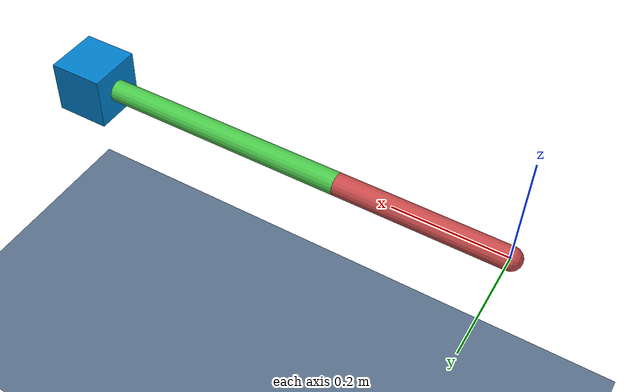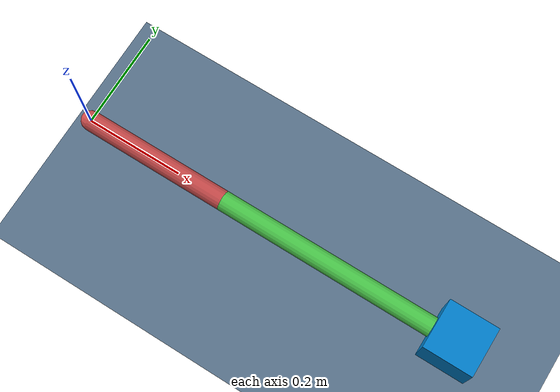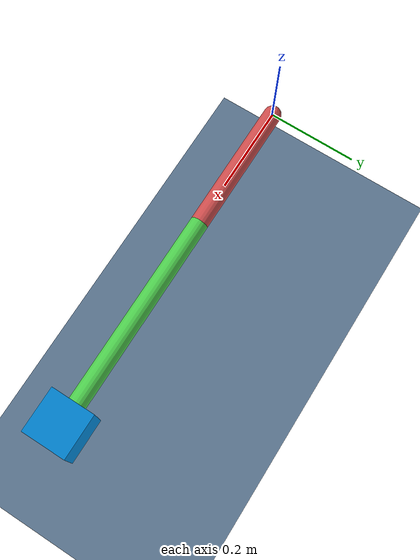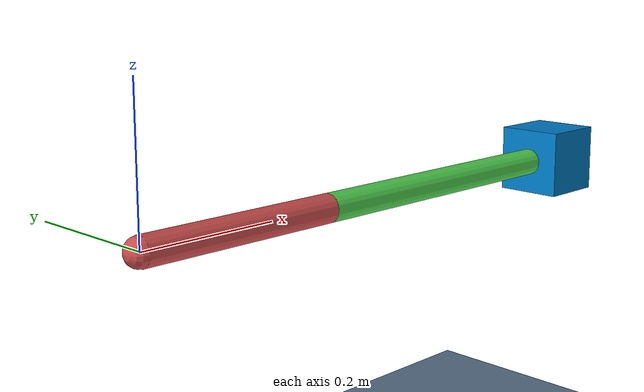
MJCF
<mujoco model="slider_crank">
    <!-- 编译和仿真选项 -->
    <compiler angle="degree" coordinate="local"/>

    <option timestep="0.001" gravity="0 0 -9.81" />

  <asset>
    <texture name="groundplane" type="2d" builtin="checker" rgb1="0.2 0.3 0.4" rgb2="0.5 0.6 0.7" mark="edge" markrgb="0.8 0.8 0.8" width="300" height="300"/>
    <material name="groundplane" texture="groundplane" texrepeat="5 5" texuniform="true" reflectance="0.5"/>
  </asset>

    <!-- 世界坐标系(地面) -->
    <worldbody>
        <light name="light_0" pos="0 0 10" dir="0 0 -1"/>
        <geom name="ground_plane" pos="0 0 -0.5" type="plane" size="5 5 0.1"  material="groundplane"/>

        <!-- 第一根连杆 Link1: 以A点为铰，在z轴转动 -->
        <body name="link1" pos="0 0 0">
            <!-- 关节：绕z轴的hinge -->
            <joint name="jointA" type="hinge" axis="0 1 0" limited="false" damping="5"/>
            <!-- 这段geom仅用于可视化，假设AB长度 l1 = 1.0 -->
            <geom name="geom_link1"
                  type="capsule"
                  fromto="0 0 0 0.3 0 0"
                  size="0.02"
                  density="100"
                  rgba="0.8 0.3 0.3 1"/>

            <!-- 第二根连杆 Link2: 以B点为铰接(仍然绕z轴) -->
            <!-- 注意：pos="1 0 0" 表示此body相对于 link1 的坐标原点在B点 -->
            <body name="link2" pos="0.3 0 0">
                <joint name="jointB" type="hinge" axis="0 1 0" limited="false"/>
                <!-- 假设BC长度 l2 = 1.0 -->
                <geom name="geom_link2"
                      type="capsule"
                      fromto="0 0 0 0.5 0 0"
                      size="0.02"
                      density="100"
                      rgba="0.3 0.8 0.3 1"/>

                <!-- 在 link2 的末端放一个 site，用于和滑块对齐做约束 -->
                <!-- 末端C点在 link2 局部就是(1,0,0) -->
                <site name="end_of_link2" pos="0.5 0 0" size="0.01" rgba="1 0 0 1"/>
            </body>
        </body>

        <!-- 滑块 C: 只能在 x 轴方向滑动。这里将其直接挂在 worldbody 上 -->
        <body name="slider" pos="0.8 0 0">
            <!-- slide 关节，axis="1 0 0" 表示仅沿x轴运动 -->
            <joint name="jointC_slide" type="slide" axis="1 0 0" limited="false"/>
            <!-- 可视化用的几何体：假设是一个小长方体 -->
            <geom name="geom_slider"
                  type="box"
                  size="0.05 0.05 0.05"
                  rgba="0 0.5 0.8 1"
                  density="100"/>
            <!-- 在滑块自身定义一个 site，用来和 link2 的末端做对齐 -->
            <site name="slider_site" pos="0 0 0" size="0.01" rgba="0 1 0 1"/>
        </body>
    </worldbody>

    <!-- equality 约束，用于将 link2 的末端 C 点 和 滑块对齐，从而形成闭环 -->
    <equality>
        <connect name="link2_slider_pin"
                 site1="end_of_link2"
                 site2="slider_site" />

    </equality>

    <!-- 在 A 点设置一个位置控制器(或力矩控制器) -->
    <actuator>
        <!-- 位置控制器：kp 表示刚度系数，ctrlRange 表示期望位置的可控范围(弧度) -->
        <position name="A_pos_act" joint="jointA" kp="20" ctrlrange="-31.4 31.4"/>
    </actuator>
</mujoco>
